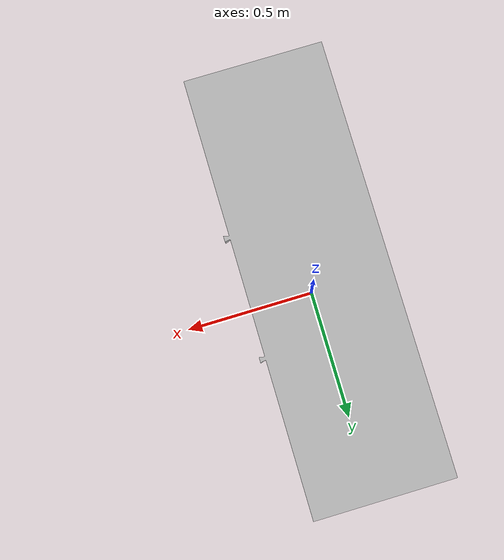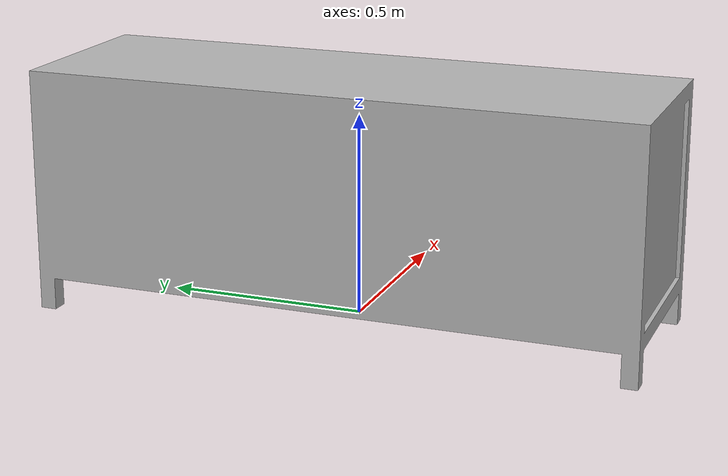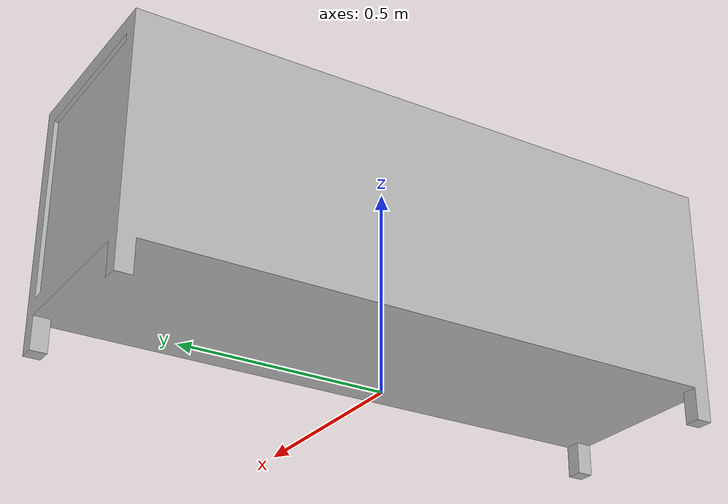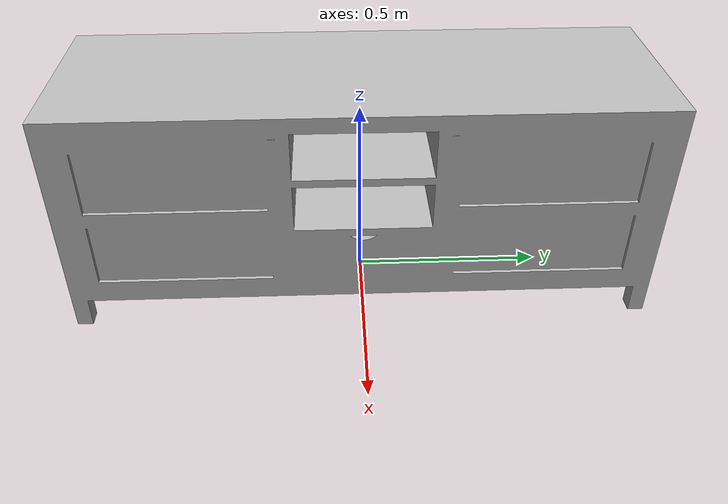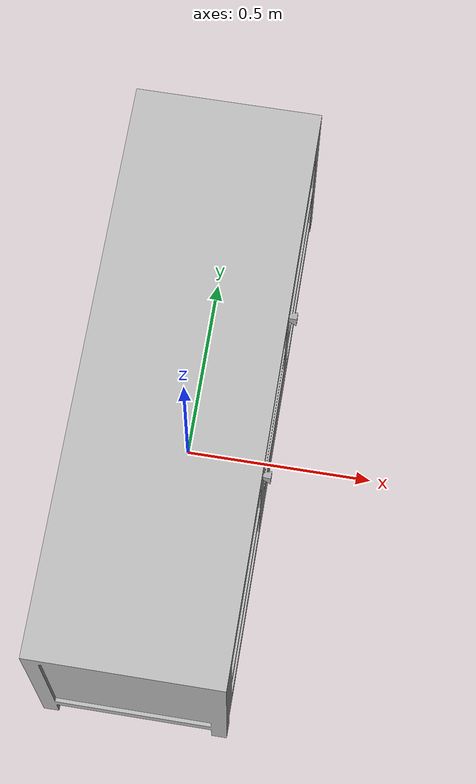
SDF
<?xml version='1.0'?>
<sdf version='1.4'>
  <model name='451'>
    <pose>0 0 0 0 0 0</pose>
    <static>true</static>
    <link name='link'>
      <collision name='collision'>
        <pose>0 0 0 0 0 0</pose>
        <geometry>
          <box>
            <size>0.5 1.5 2</size>
          </box>
        </geometry>
      </collision>
      <visual name='visual'>
        <pose>0 0 0 0 0 0</pose>
        <geometry>
          <mesh><uri>model://451/451.dae</uri></mesh>
        </geometry>
      </visual>
    </link>
  </model>
</sdf>
